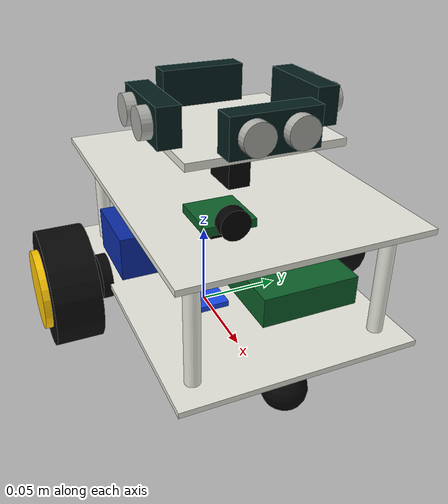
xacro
<?xml version="1.0"?>
<robot name="esibot" xmlns:xacro="http://www.ros.org/wiki/xacro">

  <xacro:property name="pi" value="3.141592653589793"/>

  <!-- Chassis measured/derived from project files and visual references. -->
  <xacro:property name="plate_x" value="0.182"/>
  <xacro:property name="plate_y" value="0.126"/>
  <xacro:property name="plate_z" value="0.003"/>
  <xacro:property name="wheel_radius" value="0.033"/>
  <xacro:property name="wheel_width" value="0.026"/>
  <xacro:property name="wheel_separation" value="0.170"/>
  <xacro:property name="axle_x" value="-0.030"/>
  <xacro:property name="upper_deck_z" value="0.060"/>
  <xacro:property name="deck_center_x" value="${-axle_x}"/>
  <xacro:property name="caster_radius" value="0.012"/>

  <xacro:property name="servo_height" value="0.027"/>
  <xacro:property name="radar_plate_x" value="0.082"/>
  <xacro:property name="radar_plate_y" value="0.082"/>
  <xacro:property name="radar_plate_z" value="0.004"/>
  <xacro:property name="sonar_radius" value="0.008"/>
  <xacro:property name="sonar_arm" value="0.041"/>

  <xacro:macro name="box_inertia" params="mass x y z">
    <inertia ixx="${mass * (y*y + z*z) / 12.0}" ixy="0" ixz="0"
             iyy="${mass * (x*x + z*z) / 12.0}" iyz="0"
             izz="${mass * (x*x + y*y) / 12.0}"/>
  </xacro:macro>

  <xacro:macro name="cylinder_inertia" params="mass radius length">
    <inertia ixx="${mass * (3*radius*radius + length*length) / 12.0}" ixy="0" ixz="0"
             iyy="${mass * (3*radius*radius + length*length) / 12.0}" iyz="0"
             izz="${mass * radius*radius / 2.0}"/>
  </xacro:macro>

  <xacro:macro name="sphere_inertia" params="mass radius">
    <inertia ixx="${2.0 * mass * radius*radius / 5.0}" ixy="0" ixz="0"
             iyy="${2.0 * mass * radius*radius / 5.0}" iyz="0"
             izz="${2.0 * mass * radius*radius / 5.0}"/>
  </xacro:macro>

  <material name="white_acrylic">
    <color rgba="0.92 0.92 0.88 1.0"/>
  </material>
  <material name="black_plastic">
    <color rgba="0.02 0.02 0.02 1.0"/>
  </material>
  <material name="yellow_wheel">
    <color rgba="1.00 0.78 0.02 1.0"/>
  </material>
  <material name="rubber">
    <color rgba="0.03 0.03 0.03 1.0"/>
  </material>
  <material name="metal">
    <color rgba="0.70 0.70 0.72 1.0"/>
  </material>
  <material name="pcb_green">
    <color rgba="0.05 0.38 0.16 1.0"/>
  </material>
  <material name="driver_blue">
    <color rgba="0.04 0.17 0.65 1.0"/>
  </material>
  <material name="camera_black">
    <color rgba="0.01 0.01 0.01 1.0"/>
  </material>
  <material name="imu_blue">
    <color rgba="0.10 0.30 0.95 1.0"/>
  </material>
  <material name="sonar_pcb">
    <color rgba="0.02 0.12 0.11 1.0"/>
  </material>
  <material name="sonar_can">
    <color rgba="0.68 0.68 0.66 1.0"/>
  </material>
  <link name="base_footprint"/>

  <joint name="base_joint" type="fixed">
    <parent link="base_footprint"/>
    <child link="base_link"/>
    <origin xyz="0 0 ${wheel_radius}" rpy="0 0 0"/>
  </joint>

  <link name="base_link">
    <visual>
      <origin xyz="${deck_center_x} 0 0" rpy="0 0 0"/>
      <geometry>
        <box size="${plate_x} ${plate_y} ${plate_z}"/>
      </geometry>
      <material name="white_acrylic"/>
    </visual>
    <collision>
      <origin xyz="${deck_center_x} 0 0" rpy="0 0 0"/>
      <geometry>
        <box size="${plate_x} ${plate_y} ${plate_z}"/>
      </geometry>
    </collision>
    <inertial>
      <origin xyz="${deck_center_x} 0 0" rpy="0 0 0"/>
      <mass value="0.30"/>
      <xacro:box_inertia mass="0.30" x="${plate_x}" y="${plate_y}" z="${plate_z}"/>
    </inertial>
  </link>

  <xacro:macro name="standoff" params="name x y">
    <link name="${name}_standoff_link">
      <visual>
        <geometry>
          <cylinder radius="0.004" length="${upper_deck_z}"/>
        </geometry>
        <material name="white_acrylic"/>
      </visual>
      <collision>
        <geometry>
          <cylinder radius="0.004" length="${upper_deck_z}"/>
        </geometry>
      </collision>
      <inertial>
        <mass value="0.008"/>
        <xacro:cylinder_inertia mass="0.008" radius="0.004" length="${upper_deck_z}"/>
      </inertial>
    </link>
    <joint name="${name}_standoff_joint" type="fixed">
      <parent link="base_link"/>
      <child link="${name}_standoff_link"/>
      <origin xyz="${deck_center_x + x} ${y} ${plate_z/2.0 + upper_deck_z/2.0}" rpy="0 0 0"/>
    </joint>
  </xacro:macro>

  <xacro:standoff name="front_left" x="0.075" y="0.050"/>
  <xacro:standoff name="front_right" x="0.075" y="-0.050"/>
  <xacro:standoff name="rear_left" x="-0.075" y="0.050"/>
  <xacro:standoff name="rear_right" x="-0.075" y="-0.050"/>

  <link name="upper_deck_link">
    <visual>
      <origin xyz="${deck_center_x} 0 0" rpy="0 0 0"/>
      <geometry>
        <box size="${plate_x} ${plate_y} ${plate_z}"/>
      </geometry>
      <material name="white_acrylic"/>
    </visual>
    <collision>
      <origin xyz="${deck_center_x} 0 0" rpy="0 0 0"/>
      <geometry>
        <box size="${plate_x} ${plate_y} ${plate_z}"/>
      </geometry>
    </collision>
    <inertial>
      <origin xyz="${deck_center_x} 0 0" rpy="0 0 0"/>
      <mass value="0.18"/>
      <xacro:box_inertia mass="0.18" x="${plate_x}" y="${plate_y}" z="${plate_z}"/>
    </inertial>
  </link>

  <joint name="upper_deck_joint" type="fixed">
    <parent link="base_link"/>
    <child link="upper_deck_link"/>
    <origin xyz="0 0 ${plate_z + upper_deck_z}" rpy="0 0 0"/>
  </joint>

  <xacro:macro name="drive_wheel" params="side y_sign">
    <link name="${side}_wheel_link">
      <visual>
        <origin xyz="0 0 0" rpy="${pi/2.0} 0 0"/>
        <geometry>
          <cylinder radius="${wheel_radius}" length="${wheel_width}"/>
        </geometry>
        <material name="rubber"/>
      </visual>
      <visual>
        <origin xyz="0 ${y_sign * (wheel_width/2.0 + 0.002)} 0" rpy="${pi/2.0} 0 0"/>
        <geometry>
          <cylinder radius="${wheel_radius * 0.68}" length="0.004"/>
        </geometry>
        <material name="yellow_wheel"/>
      </visual>
      <collision>
        <origin xyz="0 0 0" rpy="${pi/2.0} 0 0"/>
        <geometry>
          <cylinder radius="${wheel_radius}" length="${wheel_width}"/>
        </geometry>
      </collision>
      <inertial>
        <origin xyz="0 0 0" rpy="${pi/2.0} 0 0"/>
        <mass value="0.06"/>
        <xacro:cylinder_inertia mass="0.06" radius="${wheel_radius}" length="${wheel_width}"/>
      </inertial>
    </link>

    <joint name="${side}_wheel_joint" type="continuous">
      <parent link="base_link"/>
      <child link="${side}_wheel_link"/>
      <origin xyz="0 ${y_sign * wheel_separation/2.0} 0" rpy="0 0 0"/>
      <axis xyz="0 1 0"/>
      <dynamics damping="0.1" friction="0.05"/>
    </joint>

    <link name="${side}_encoder_link">
      <visual>
        <origin xyz="0 0 0" rpy="${pi/2.0} 0 0"/>
        <geometry>
          <cylinder radius="0.013" length="0.006"/>
        </geometry>
        <material name="black_plastic"/>
      </visual>
      <inertial>
        <mass value="0.004"/>
        <xacro:cylinder_inertia mass="0.004" radius="0.013" length="0.006"/>
      </inertial>
    </link>

    <joint name="${side}_encoder_joint" type="fixed">
      <parent link="${side}_wheel_link"/>
      <child link="${side}_encoder_link"/>
      <origin xyz="0 ${-y_sign * (wheel_width/2.0 + 0.008)} 0" rpy="0 0 0"/>
    </joint>
  </xacro:macro>

  <xacro:drive_wheel side="left" y_sign="1"/>
  <xacro:drive_wheel side="right" y_sign="-1"/>

  <link name="caster_wheel_link">
    <visual>
      <geometry>
        <sphere radius="${caster_radius}"/>
      </geometry>
      <material name="black_plastic"/>
    </visual>
    <collision>
      <geometry>
        <sphere radius="${caster_radius}"/>
      </geometry>
    </collision>
    <inertial>
      <mass value="0.02"/>
      <xacro:sphere_inertia mass="0.02" radius="${caster_radius}"/>
    </inertial>
  </link>

  <joint name="caster_wheel_joint" type="fixed">
    <parent link="base_link"/>
    <child link="caster_wheel_link"/>
    <origin xyz="${deck_center_x + plate_x/2.0 - 0.018} 0 ${caster_radius - wheel_radius}" rpy="0 0 0"/>
  </joint>

  <link name="raspberry_pi_link">
    <visual>
      <geometry>
        <box size="0.085 0.056 0.017"/>
      </geometry>
      <material name="pcb_green"/>
    </visual>
    <collision>
      <geometry>
        <box size="0.085 0.056 0.017"/>
      </geometry>
    </collision>
    <inertial>
      <mass value="0.046"/>
      <xacro:box_inertia mass="0.046" x="0.085" y="0.056" z="0.017"/>
    </inertial>
  </link>

  <joint name="raspberry_pi_joint" type="fixed">
    <parent link="base_link"/>
    <child link="raspberry_pi_link"/>
    <origin xyz="${deck_center_x + 0.010} 0.026 ${plate_z/2.0 + 0.0085}" rpy="0 0 0"/>
  </joint>

  <link name="l298n_link">
    <visual>
      <geometry>
        <box size="0.043 0.043 0.026"/>
      </geometry>
      <material name="driver_blue"/>
    </visual>
    <collision>
      <geometry>
        <box size="0.043 0.043 0.026"/>
      </geometry>
    </collision>
    <inertial>
      <mass value="0.030"/>
      <xacro:box_inertia mass="0.030" x="0.043" y="0.043" z="0.026"/>
    </inertial>
  </link>

  <joint name="l298n_joint" type="fixed">
    <parent link="base_link"/>
    <child link="l298n_link"/>
    <origin xyz="${deck_center_x - 0.040} -0.034 ${plate_z/2.0 + 0.013}" rpy="0 0 0"/>
  </joint>

  <link name="battery_link">
    <visual>
      <geometry>
        <box size="0.095 0.036 0.024"/>
      </geometry>
      <material name="black_plastic"/>
    </visual>
    <collision>
      <geometry>
        <box size="0.095 0.036 0.024"/>
      </geometry>
    </collision>
    <inertial>
      <mass value="0.18"/>
      <xacro:box_inertia mass="0.18" x="0.095" y="0.036" z="0.024"/>
    </inertial>
  </link>

  <joint name="battery_joint" type="fixed">
    <parent link="base_link"/>
    <child link="battery_link"/>
    <origin xyz="${deck_center_x - 0.052} 0.000 ${plate_z/2.0 + 0.012}" rpy="0 0 0"/>
  </joint>

  <link name="imu_link">
    <visual>
      <geometry>
        <box size="0.020 0.016 0.003"/>
      </geometry>
      <material name="imu_blue"/>
    </visual>
    <collision>
      <geometry>
        <box size="0.020 0.016 0.003"/>
      </geometry>
    </collision>
    <inertial>
      <mass value="0.003"/>
      <xacro:box_inertia mass="0.003" x="0.020" y="0.016" z="0.003"/>
    </inertial>
  </link>

  <joint name="imu_joint" type="fixed">
    <parent link="base_link"/>
    <child link="imu_link"/>
    <origin xyz="${deck_center_x + 0.018} -0.018 ${plate_z/2.0 + 0.0015}" rpy="0 0 0"/>
  </joint>

  <link name="raspi_camera_link">
    <visual>
      <geometry>
        <box size="0.025 0.024 0.004"/>
      </geometry>
      <material name="pcb_green"/>
    </visual>
    <visual>
      <origin xyz="0.014 0 0.003" rpy="0 ${pi/2.0} 0"/>
      <geometry>
        <cylinder radius="0.007" length="0.006"/>
      </geometry>
      <material name="camera_black"/>
    </visual>
    <visual>
      <origin xyz="-0.004 0 -0.005" rpy="0 0 0"/>
      <geometry>
        <box size="0.018 0.012 0.006"/>
      </geometry>
      <material name="camera_black"/>
    </visual>
    <collision>
      <geometry>
        <box size="0.025 0.024 0.010"/>
      </geometry>
    </collision>
    <inertial>
      <mass value="0.006"/>
      <xacro:box_inertia mass="0.006" x="0.025" y="0.024" z="0.010"/>
    </inertial>
  </link>

  <joint name="raspi_camera_joint" type="fixed">
    <parent link="upper_deck_link"/>
    <child link="raspi_camera_link"/>
    <origin xyz="${deck_center_x + 0.058} -0.030 ${plate_z/2.0 + 0.010}" rpy="0 0 0"/>
  </joint>

  <link name="camera_link">
    <inertial>
      <mass value="0.001"/>
      <xacro:box_inertia mass="0.001" x="0.001" y="0.001" z="0.001"/>
    </inertial>
  </link>

  <joint name="camera_joint" type="fixed">
    <parent link="raspi_camera_link"/>
    <child link="camera_link"/>
    <origin xyz="0.017 0 0.003" rpy="0 0 0"/>
  </joint>

  <link name="servo_link">
    <visual>
      <geometry>
        <box size="0.023 0.012 ${servo_height}"/>
      </geometry>
      <material name="black_plastic"/>
    </visual>
    <collision>
      <geometry>
        <box size="0.023 0.012 ${servo_height}"/>
      </geometry>
    </collision>
    <inertial>
      <mass value="0.055"/>
      <xacro:box_inertia mass="0.055" x="0.023" y="0.012" z="${servo_height}"/>
    </inertial>
  </link>

  <joint name="servo_joint" type="revolute">
    <parent link="upper_deck_link"/>
    <child link="servo_link"/>
    <origin xyz="${deck_center_x + 0.005} 0 ${plate_z/2.0 + servo_height/2.0}" rpy="0 0 0"/>
    <axis xyz="0 0 1"/>
    <limit lower="0.0" upper="${pi}" effort="0.4" velocity="3.14"/>
    <dynamics damping="0.05" friction="0.01"/>
  </joint>

  <link name="radar_platform_link">
    <visual>
      <geometry>
        <box size="${radar_plate_x} ${radar_plate_y} ${radar_plate_z}"/>
      </geometry>
      <material name="white_acrylic"/>
    </visual>
    <collision>
      <geometry>
        <box size="${radar_plate_x} ${radar_plate_y} ${radar_plate_z}"/>
      </geometry>
    </collision>
    <inertial>
      <mass value="0.020"/>
      <xacro:box_inertia mass="0.020" x="${radar_plate_x}" y="${radar_plate_y}" z="${radar_plate_z}"/>
    </inertial>
  </link>

  <joint name="radar_platform_joint" type="fixed">
    <parent link="servo_link"/>
    <child link="radar_platform_link"/>
    <origin xyz="0 0 ${servo_height/2.0 + radar_plate_z/2.0}" rpy="0 0 0"/>
  </joint>

  <link name="radar_link">
    <inertial>
      <mass value="0.001"/>
      <xacro:sphere_inertia mass="0.001" radius="0.001"/>
    </inertial>
  </link>

  <joint name="radar_joint" type="fixed">
    <parent link="radar_platform_link"/>
    <child link="radar_link"/>
    <origin xyz="0 0 ${radar_plate_z/2.0 + 0.009}" rpy="0 0 0"/>
  </joint>

  <xacro:macro name="sonar_module" params="name yaw">
    <link name="${name}_ultrasonic_link">
      <visual>
        <origin xyz="0 0 0" rpy="0 0 0"/>
        <geometry>
          <box size="0.012 0.046 0.020"/>
        </geometry>
        <material name="sonar_pcb"/>
      </visual>
      <visual>
        <origin xyz="0.008 0.011 0" rpy="0 ${pi/2.0} 0"/>
        <geometry>
          <cylinder radius="${sonar_radius}" length="0.007"/>
        </geometry>
        <material name="sonar_can"/>
      </visual>
      <visual>
        <origin xyz="0.008 -0.011 0" rpy="0 ${pi/2.0} 0"/>
        <geometry>
          <cylinder radius="${sonar_radius}" length="0.007"/>
        </geometry>
        <material name="sonar_can"/>
      </visual>
      <collision>
        <geometry>
          <box size="0.016 0.046 0.020"/>
        </geometry>
      </collision>
      <inertial>
        <mass value="0.010"/>
        <xacro:box_inertia mass="0.010" x="0.016" y="0.046" z="0.020"/>
      </inertial>
    </link>
    <joint name="${name}_ultrasonic_joint" type="fixed">
      <parent link="radar_platform_link"/>
      <child link="${name}_ultrasonic_link"/>
      <origin xyz="${sonar_arm * cos(yaw)} ${sonar_arm * sin(yaw)} ${radar_plate_z/2.0 + 0.010}"
              rpy="0 0 ${yaw}"/>
    </joint>
  </xacro:macro>

  <xacro:sonar_module name="front" yaw="0"/>
  <xacro:sonar_module name="left" yaw="${pi/2.0}"/>
  <xacro:sonar_module name="rear" yaw="${pi}"/>
  <xacro:sonar_module name="right" yaw="${-pi/2.0}"/>

</robot>
